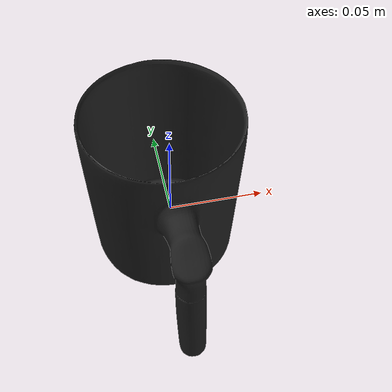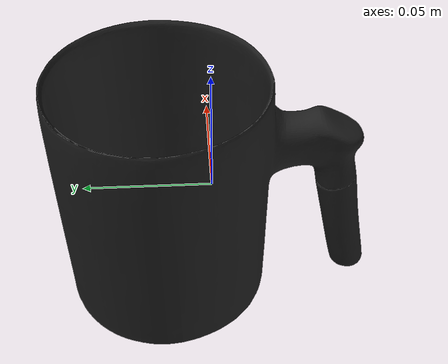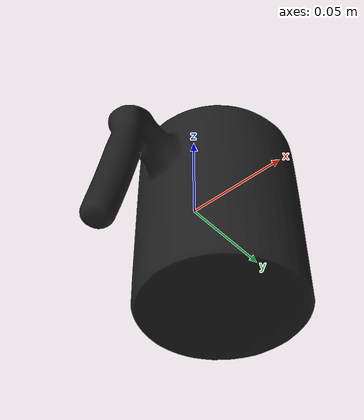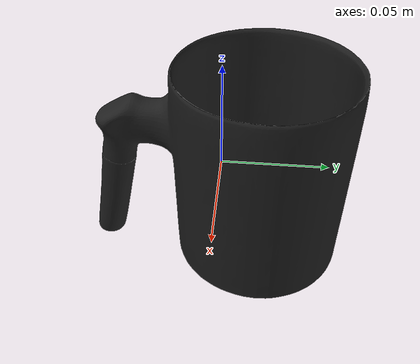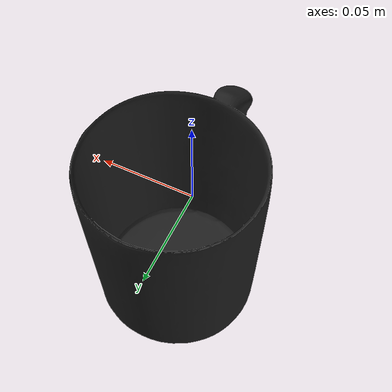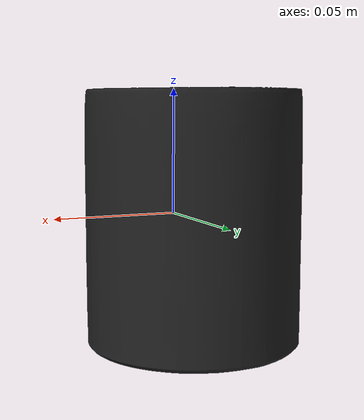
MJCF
<mujoco model="black_cup">
  <asset>
    <!-- 原始mesh单位是mm -->
    <!-- black_cup 读取到的建模中心为0.85 yellow_cup读取到的建模中心为0.83-->
    <mesh file="meshes/black_cup/black_cup.obj" name="black_cup_mesh" scale="0.001 0.001 0.001"/>
    <!-- 显式定义纹理，确保路径正确 -->
    <texture file="meshes/black_cup/Image_0.png" name="tex-black-cup" type="2d"/>
    <!-- 显式定义材质，引用上面的纹理 -->
    <material name="black_cup_mat" reflectance="0.5" texrepeat="1 1" texture="tex-black-cup"/>
  </asset>
  <worldbody>
    <body>
      <body name="object">
        <!-- 显式指定 material，利用 OBJ 的 UV 坐标进行贴图 -->
        <geom pos="0 0 0" mesh="black_cup_mesh" type="mesh" solimp="0.998 0.998 0.001" solref="0.001 1" density="1000" friction="0.95 0.3 0.1" group="0" condim="4" material="black_cup_mat"/>
      </body>
      <!-- 标记物体的底部接触点、中心点以及水平边缘点，用于随机摆放时的碰撞检测 -->
      <site rgba="0 0 0 0" size="0.005" pos="0 0 -0.05" name="bottom_site"/>
      <site rgba="0 0 0 0" size="0.005" pos="0 0 0.05" name="top_site"/>
      <site rgba="0 0 0 0" size="0.005" pos="0.085 0 0" name="horizontal_radius_site"/>
    </body>
  </worldbody>
</mujoco>
